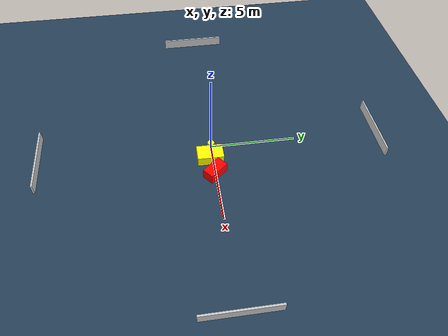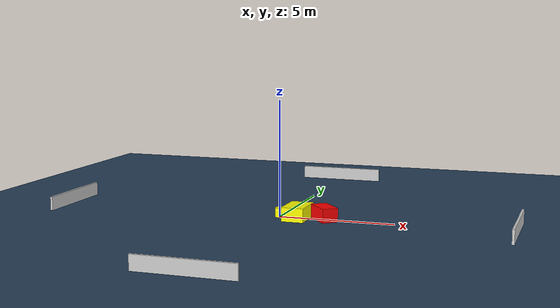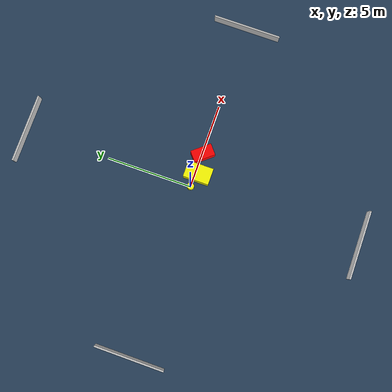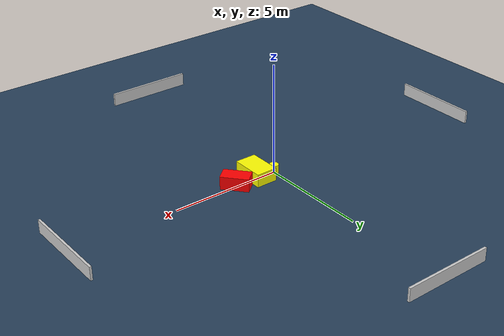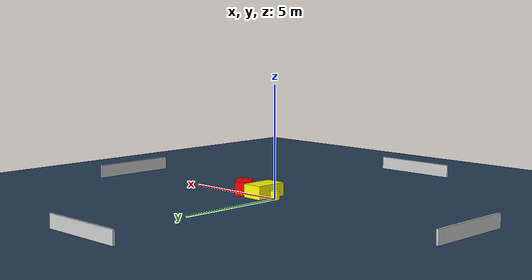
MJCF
<?xml version="1.0" ?>
<mujoco model="generated_environment">
  <option timestep="0.01" integrator="RK4" cone="elliptic"/>
  <default>
    <geom density="1"/>
  </default>
  <asset>
    <texture builtin="gradient" height="3072" name="skybox" rgb1="0.3 0.5 0.7" rgb2="0 0 0" type="skybox" width="512"/>
    <texture builtin="checker" height="300" name="groundplane" rgb1="0.2 0.3 0.4" rgb2="0.1 0.2 0.3" type="2d" width="300"/>
    <material name="groundplane" reflectance="0.2" texrepeat="5 5" texture="groundplane"/>
  </asset>
  <worldbody>
    <light dir="0 0 -1" directional="true" pos="0 0 1.5"/>
    <geom condim="3" friction="0.5 0.005 0.001" material="groundplane" name="floor" pos="0 0 0" size="0 0 0.05" type="plane"/>
    <body name="walls">
      <geom name="wall_1" condim="4" pos="-10.0 0.0 0.3" rgba="0.800000011920929 0.800000011920929 0.800000011920929 1.0" size="0.05 2.0 0.3" type="box"/>
      <geom name="wall_2" condim="4" pos="10.0 0.0 0.3" rgba="0.800000011920929 0.800000011920929 0.800000011920929 1.0" size="0.05 2.0 0.3" type="box"/>
      <geom name="wall_3" condim="4" pos="0.0 -10.0 0.3" rgba="0.800000011920929 0.800000011920929 0.800000011920929 1.0" size="2.0 0.05 0.3" type="box"/>
      <geom name="wall_4" condim="4" pos="0.0 10.0 0.3" rgba="0.800000011920929 0.800000011920929 0.800000011920929 1.0" size="2.0 0.05 0.3" type="box"/>
    </body>
    <body name="robot">
      <joint name="joint_x" type="slide" pos="0 0 0" axis="1 0 0"/>
      <joint name="joint_y" type="slide" pos="0 0 0" axis="0 1 0"/>
      <geom name="robot" type="cylinder" pos="0.0 0.0 0.2" size="0.2 0.2 0.0" mass="5.0" friction="1.0 0.005 0.0001" condim="4" rgba="1.0 1.0 0.0 1.0"/>
    </body>
    <body name="obstacle_1_movable">
      <geom name="obstacle_1_movable" condim="4" pos="0.8432735334265767 -0.16526378089375068 0.3" euler="0 0 179.82213805920276" friction="0.0 0.005 0.001" rgba="1.0 1.0 0.0 1.0" size="0.4810965566670115 0.7505614656679505 0.3" type="box" mass="0.1"/>
      <joint type="free"/>
    </body>
    <body name="obstacle_2_static">
      <geom name="obstacle_2_static" condim="4" pos="1.9981006023473515 -0.032338383560847624 0.3" euler="0 0 219.96122174042375" friction="0.0 0.005 0.001" rgba="1.0 0.0 0.0 1.0" size="0.343192985095271 0.6244008036861504 0.3" type="box"/>
    </body>
  </worldbody>
  <actuator>
    <motor name="actuator_x" joint="joint_x" gear="1" ctrlrange="-1 1"/>
    <motor name="actuator_y" joint="joint_y" gear="1" ctrlrange="-1 1"/>
  </actuator>
</mujoco>
